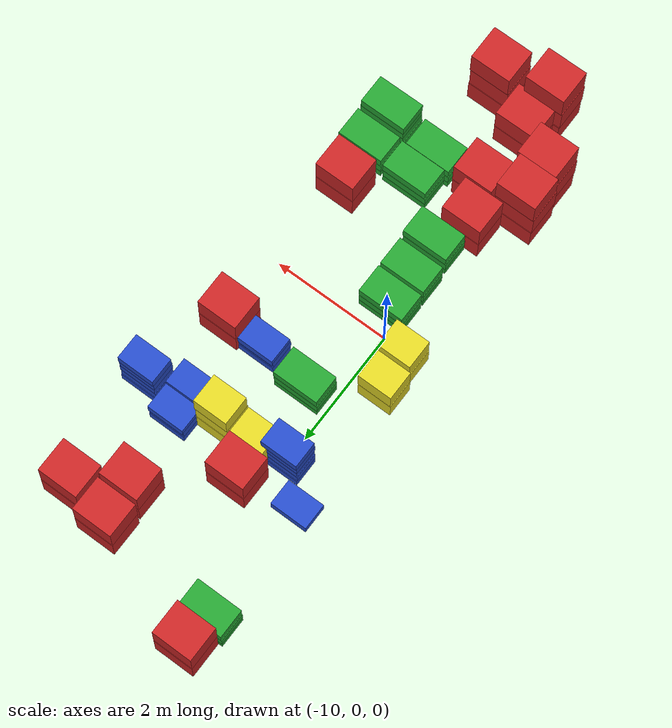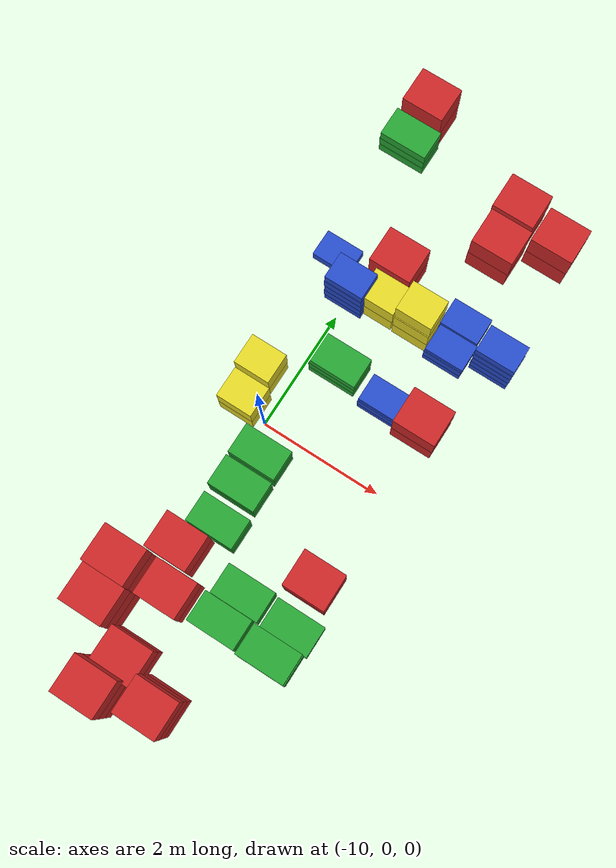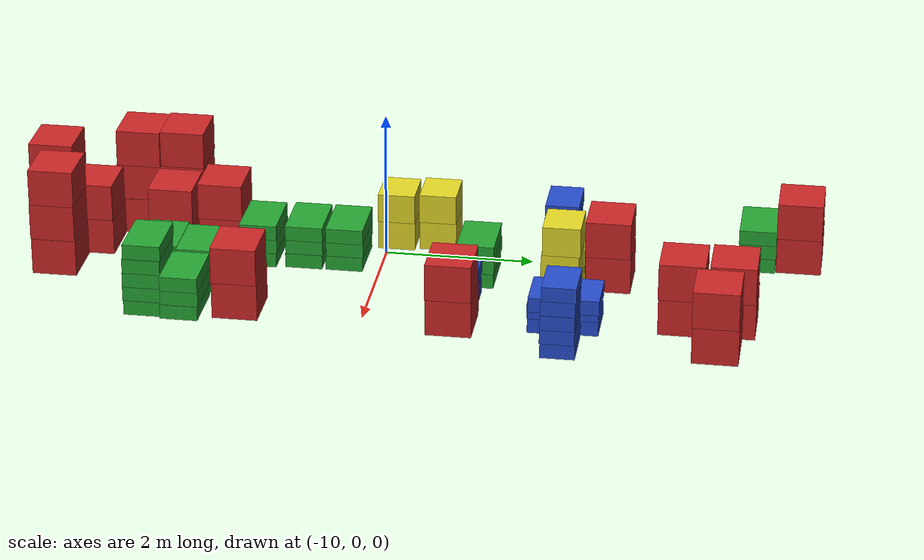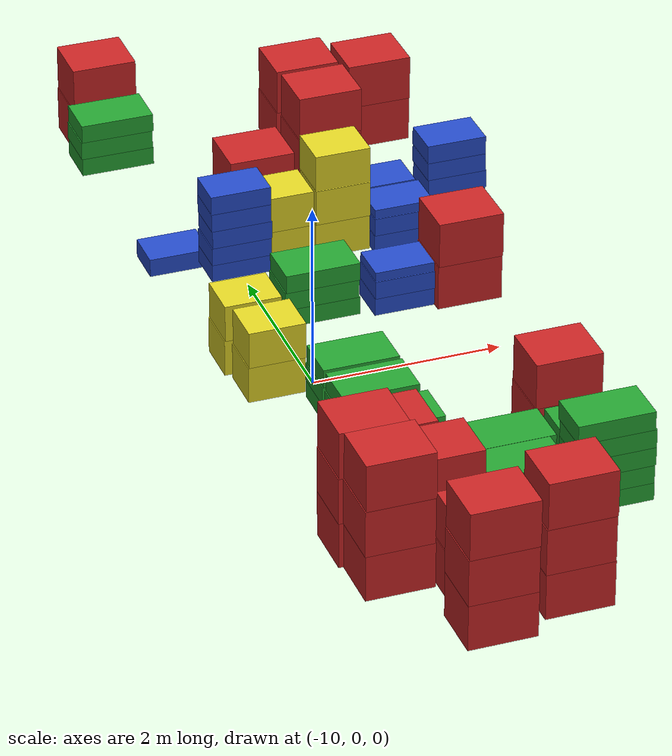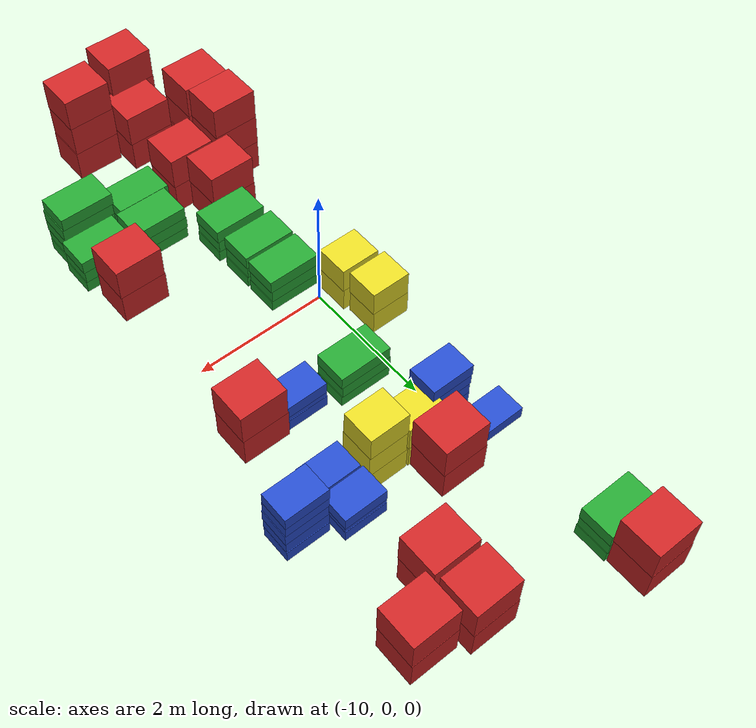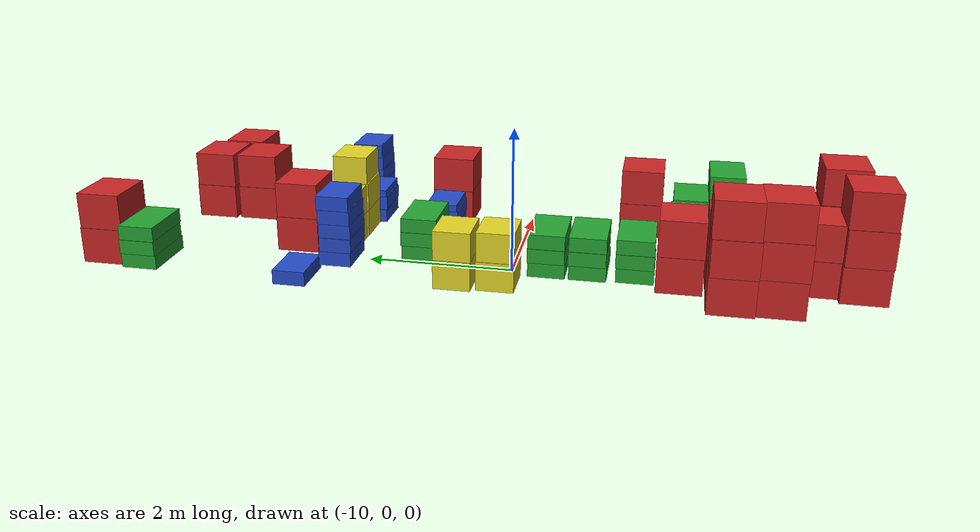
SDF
<sdf version="1.6">
 <world name="default">
  <include><uri>model://sun</uri></include>
  <model name="baggage_A_x3_15">
   <model name="baggage_A_0">
    <static>1</static>
    <link name="link">
     <collision name="collision"><geometry><box><size>0.7 0.6 0.5</size></box></geometry></collision>
     <visual name="visual">
      <geometry><box><size>0.7 0.6 0.5</size></box></geometry>
      <material>
       <script><uri>file://media/materials/scripts/gazebo.material</uri><name>Gazebo/Red</name></script>
      </material>
     </visual>
    </link>
    <pose>0 0 0.25 0 -0 0</pose>
   </model>
   <model name="baggage_A_1">
    <static>1</static>
    <link name="link">
     <collision name="collision"><geometry><box><size>0.7 0.6 0.5</size></box></geometry></collision>
     <visual name="visual">
      <geometry><box><size>0.7 0.6 0.5</size></box></geometry>
      <material>
       <script><uri>file://media/materials/scripts/gazebo.material</uri><name>Gazebo/Red</name></script>
      </material>
     </visual>
    </link>
    <pose>-0.006 -0.0077 0.75 0 -0 0</pose>
   </model>
   <model name="baggage_A_2">
    <static>1</static>
    <link name="link">
     <collision name="collision"><geometry><box><size>0.7 0.6 0.5</size></box></geometry></collision>
     <visual name="visual">
      <geometry><box><size>0.7 0.6 0.5</size></box></geometry>
      <material>
       <script><uri>file://media/materials/scripts/gazebo.material</uri><name>Gazebo/Red</name></script>
      </material>
     </visual>
    </link>
    <pose>0.0045 0.0005 1.25 0 -0 0</pose>
   </model>
   <pose>-10.4661 -3.4462 0 0 -0 0</pose>
  </model>
  <model name="baggage_A_x3_16">
   <model name="baggage_A_0">
    <static>1</static>
    <link name="link">
     <collision name="collision"><geometry><box><size>0.7 0.6 0.5</size></box></geometry></collision>
     <visual name="visual">
      <geometry><box><size>0.7 0.6 0.5</size></box></geometry>
      <material>
       <script><uri>file://media/materials/scripts/gazebo.material</uri><name>Gazebo/Red</name></script>
      </material>
     </visual>
    </link>
    <pose>0 0 0.25 0 -0 0</pose>
   </model>
   <model name="baggage_A_1">
    <static>1</static>
    <link name="link">
     <collision name="collision"><geometry><box><size>0.7 0.6 0.5</size></box></geometry></collision>
     <visual name="visual">
      <geometry><box><size>0.7 0.6 0.5</size></box></geometry>
      <material>
       <script><uri>file://media/materials/scripts/gazebo.material</uri><name>Gazebo/Red</name></script>
      </material>
     </visual>
    </link>
    <pose>-0.006 -0.0077 0.75 0 -0 0</pose>
   </model>
   <model name="baggage_A_2">
    <static>1</static>
    <link name="link">
     <collision name="collision"><geometry><box><size>0.7 0.6 0.5</size></box></geometry></collision>
     <visual name="visual">
      <geometry><box><size>0.7 0.6 0.5</size></box></geometry>
      <material>
       <script><uri>file://media/materials/scripts/gazebo.material</uri><name>Gazebo/Red</name></script>
      </material>
     </visual>
    </link>
    <pose>0.0045 0.0005 1.25 0 -0 0</pose>
   </model>
   <pose>-10.5135 -2.84667 0 0 -0 0</pose>
  </model>
  <model name="baggage_A_x2_15">
   <model name="baggage_A_0">
    <static>1</static>
    <link name="link">
     <collision name="collision"><geometry><box><size>0.7 0.6 0.5</size></box></geometry></collision>
     <visual name="visual">
      <geometry><box><size>0.7 0.6 0.5</size></box></geometry>
      <material>
       <script><uri>file://media/materials/scripts/gazebo.material</uri><name>Gazebo/Red</name></script>
      </material>
     </visual>
    </link>
    <pose>0 0 0.25 0 -0 0</pose>
   </model>
   <model name="baggage_A_1">
    <static>1</static>
    <link name="link">
     <collision name="collision"><geometry><box><size>0.7 0.6 0.5</size></box></geometry></collision>
     <visual name="visual">
      <geometry><box><size>0.7 0.6 0.5</size></box></geometry>
      <material>
       <script><uri>file://media/materials/scripts/gazebo.material</uri><name>Gazebo/Red</name></script>
      </material>
     </visual>
    </link>
    <pose>0.0063 -0.0062 0.75 0 -0 0</pose>
   </model>
   <pose>-9.74487 -2.84389 0 0 -0 0</pose>
  </model>
  <model name="baggage_A_x2_16">
   <model name="baggage_A_0">
    <static>1</static>
    <link name="link">
     <collision name="collision"><geometry><box><size>0.7 0.6 0.5</size></box></geometry></collision>
     <visual name="visual">
      <geometry><box><size>0.7 0.6 0.5</size></box></geometry>
      <material>
       <script><uri>file://media/materials/scripts/gazebo.material</uri><name>Gazebo/Red</name></script>
      </material>
     </visual>
    </link>
    <pose>0 0 0.25 0 -0 0</pose>
   </model>
   <model name="baggage_A_1">
    <static>1</static>
    <link name="link">
     <collision name="collision"><geometry><box><size>0.7 0.6 0.5</size></box></geometry></collision>
     <visual name="visual">
      <geometry><box><size>0.7 0.6 0.5</size></box></geometry>
      <material>
       <script><uri>file://media/materials/scripts/gazebo.material</uri><name>Gazebo/Red</name></script>
      </material>
     </visual>
    </link>
    <pose>0.0063 -0.0062 0.75 0 -0 0</pose>
   </model>
   <pose>-9.98737 -2.21622 0 0 -0 0</pose>
  </model>
  <model name="baggage_D_x3_15">
   <model name="baggage_D_0">
    <static>1</static>
    <link name="link">
     <collision name="collision"><geometry><box><size>0.8 0.5 0.2</size></box></geometry></collision>
     <visual name="visual">
      <geometry><box><size>0.8 0.5 0.2</size></box></geometry>
      <material>
       <script><uri>file://media/materials/scripts/gazebo.material</uri><name>Gazebo/Green</name></script>
      </material>
     </visual>
    </link>
    <pose>0 0 0.1 0 -0 0</pose>
   </model>
   <model name="baggage_D_1">
    <static>1</static>
    <link name="link">
     <collision name="collision"><geometry><box><size>0.8 0.5 0.2</size></box></geometry></collision>
     <visual name="visual">
      <geometry><box><size>0.8 0.5 0.2</size></box></geometry>
      <material>
       <script><uri>file://media/materials/scripts/gazebo.material</uri><name>Gazebo/Green</name></script>
      </material>
     </visual>
    </link>
    <pose>-0.0056 0.0083 0.3 0 -0 0</pose>
   </model>
   <model name="baggage_D_2">
    <static>1</static>
    <link name="link">
     <collision name="collision"><geometry><box><size>0.8 0.5 0.2</size></box></geometry></collision>
     <visual name="visual">
      <geometry><box><size>0.8 0.5 0.2</size></box></geometry>
      <material>
       <script><uri>file://media/materials/scripts/gazebo.material</uri><name>Gazebo/Green</name></script>
      </material>
     </visual>
    </link>
    <pose>0.0053 0.0057 0.5 0 -0 0</pose>
   </model>
   <pose>-8.83234 -2.31719 0 0 -0 0</pose>
  </model>
  <model name="baggage_D_x3_16">
   <model name="baggage_D_0">
    <static>1</static>
    <link name="link">
     <collision name="collision"><geometry><box><size>0.8 0.5 0.2</size></box></geometry></collision>
     <visual name="visual">
      <geometry><box><size>0.8 0.5 0.2</size></box></geometry>
      <material>
       <script><uri>file://media/materials/scripts/gazebo.material</uri><name>Gazebo/Green</name></script>
      </material>
     </visual>
    </link>
    <pose>0 0 0.1 0 -0 0</pose>
   </model>
   <model name="baggage_D_1">
    <static>1</static>
    <link name="link">
     <collision name="collision"><geometry><box><size>0.8 0.5 0.2</size></box></geometry></collision>
     <visual name="visual">
      <geometry><box><size>0.8 0.5 0.2</size></box></geometry>
      <material>
       <script><uri>file://media/materials/scripts/gazebo.material</uri><name>Gazebo/Green</name></script>
      </material>
     </visual>
    </link>
    <pose>-0.0056 0.0083 0.3 0 -0 0</pose>
   </model>
   <model name="baggage_D_2">
    <static>1</static>
    <link name="link">
     <collision name="collision"><geometry><box><size>0.8 0.5 0.2</size></box></geometry></collision>
     <visual name="visual">
      <geometry><box><size>0.8 0.5 0.2</size></box></geometry>
      <material>
       <script><uri>file://media/materials/scripts/gazebo.material</uri><name>Gazebo/Green</name></script>
      </material>
     </visual>
    </link>
    <pose>0.0053 0.0057 0.5 0 -0 0</pose>
   </model>
   <pose>-8.90179 -2.8215 0 0 -0 0</pose>
  </model>
  <model name="baggage_D_x3_17">
   <model name="baggage_D_0">
    <static>1</static>
    <link name="link">
     <collision name="collision"><geometry><box><size>0.8 0.5 0.2</size></box></geometry></collision>
     <visual name="visual">
      <geometry><box><size>0.8 0.5 0.2</size></box></geometry>
      <material>
       <script><uri>file://media/materials/scripts/gazebo.material</uri><name>Gazebo/Green</name></script>
      </material>
     </visual>
    </link>
    <pose>0 0 0.1 0 -0 0</pose>
   </model>
   <model name="baggage_D_1">
    <static>1</static>
    <link name="link">
     <collision name="collision"><geometry><box><size>0.8 0.5 0.2</size></box></geometry></collision>
     <visual name="visual">
      <geometry><box><size>0.8 0.5 0.2</size></box></geometry>
      <material>
       <script><uri>file://media/materials/scripts/gazebo.material</uri><name>Gazebo/Green</name></script>
      </material>
     </visual>
    </link>
    <pose>-0.0056 0.0083 0.3 0 -0 0</pose>
   </model>
   <model name="baggage_D_2">
    <static>1</static>
    <link name="link">
     <collision name="collision"><geometry><box><size>0.8 0.5 0.2</size></box></geometry></collision>
     <visual name="visual">
      <geometry><box><size>0.8 0.5 0.2</size></box></geometry>
      <material>
       <script><uri>file://media/materials/scripts/gazebo.material</uri><name>Gazebo/Green</name></script>
      </material>
     </visual>
    </link>
    <pose>0.0053 0.0057 0.5 0 -0 0</pose>
   </model>
   <pose>-7.97113 -2.34828 0 0 -0 0</pose>
  </model>
  <model name="baggage_D_x5_14">
   <model name="baggage_D_0">
    <static>1</static>
    <link name="link">
     <collision name="collision"><geometry><box><size>0.8 0.5 0.2</size></box></geometry></collision>
     <visual name="visual">
      <geometry><box><size>0.8 0.5 0.2</size></box></geometry>
      <material>
       <script><uri>file://media/materials/scripts/gazebo.material</uri><name>Gazebo/Green</name></script>
      </material>
     </visual>
    </link>
    <pose>0 0 0.1 0 -0 0</pose>
   </model>
   <model name="baggage_D_1">
    <static>1</static>
    <link name="link">
     <collision name="collision"><geometry><box><size>0.8 0.5 0.2</size></box></geometry></collision>
     <visual name="visual">
      <geometry><box><size>0.8 0.5 0.2</size></box></geometry>
      <material>
       <script><uri>file://media/materials/scripts/gazebo.material</uri><name>Gazebo/Green</name></script>
      </material>
     </visual>
    </link>
    <pose>-0.0065 -0.0092 0.3 0 -0 0</pose>
   </model>
   <model name="baggage_D_2">
    <static>1</static>
    <link name="link">
     <collision name="collision"><geometry><box><size>0.8 0.5 0.2</size></box></geometry></collision>
     <visual name="visual">
      <geometry><box><size>0.8 0.5 0.2</size></box></geometry>
      <material>
       <script><uri>file://media/materials/scripts/gazebo.material</uri><name>Gazebo/Green</name></script>
      </material>
     </visual>
    </link>
    <pose>0.005 -0.0052 0.5 0 -0 0</pose>
   </model>
   <model name="baggage_D_3">
    <static>1</static>
    <link name="link">
     <collision name="collision"><geometry><box><size>0.8 0.5 0.2</size></box></geometry></collision>
     <visual name="visual">
      <geometry><box><size>0.8 0.5 0.2</size></box></geometry>
      <material>
       <script><uri>file://media/materials/scripts/gazebo.material</uri><name>Gazebo/Green</name></script>
      </material>
     </visual>
    </link>
    <pose>0.0074 0.0002 0.7 0 -0 0</pose>
   </model>
   <model name="baggage_D_4">
    <static>1</static>
    <link name="link">
     <collision name="collision"><geometry><box><size>0.8 0.5 0.2</size></box></geometry></collision>
     <visual name="visual">
      <geometry><box><size>0.8 0.5 0.2</size></box></geometry>
      <material>
       <script><uri>file://media/materials/scripts/gazebo.material</uri><name>Gazebo/Green</name></script>
      </material>
     </visual>
    </link>
    <pose>-0.006 0.0081 0.9 0 -0 0</pose>
   </model>
   <pose>-8.01706 -2.8393 0 0 -0 0</pose>
  </model>
  <model name="baggage_C_x2_28">
   <model name="baggage_C_0">
    <static>1</static>
    <link name="link">
     <collision name="collision"><geometry><box><size>0.6 0.5 0.4</size></box></geometry></collision>
     <visual name="visual">
      <geometry><box><size>0.6 0.5 0.4</size></box></geometry>
      <material>
       <script><uri>file://media/materials/scripts/gazebo.material</uri><name>Gazebo/Yellow</name></script>
      </material>
     </visual>
    </link>
    <pose>0 0 0.2 0 -0 0</pose>
   </model>
   <model name="baggage_C_1">
    <static>1</static>
    <link name="link">
     <collision name="collision"><geometry><box><size>0.6 0.5 0.4</size></box></geometry></collision>
     <visual name="visual">
      <geometry><box><size>0.6 0.5 0.4</size></box></geometry>
      <material>
       <script><uri>file://media/materials/scripts/gazebo.material</uri><name>Gazebo/Yellow</name></script>
      </material>
     </visual>
    </link>
    <pose>0.0093 -0.002 0.6 0 -0 0</pose>
   </model>
   <pose>-10.425 0.117379 0 0 -0 0</pose>
  </model>
  <model name="baggage_C_x2_29">
   <model name="baggage_C_0">
    <static>1</static>
    <link name="link">
     <collision name="collision"><geometry><box><size>0.6 0.5 0.4</size></box></geometry></collision>
     <visual name="visual">
      <geometry><box><size>0.6 0.5 0.4</size></box></geometry>
      <material>
       <script><uri>file://media/materials/scripts/gazebo.material</uri><name>Gazebo/Yellow</name></script>
      </material>
     </visual>
    </link>
    <pose>0 0 0.2 0 -0 0</pose>
   </model>
   <model name="baggage_C_1">
    <static>1</static>
    <link name="link">
     <collision name="collision"><geometry><box><size>0.6 0.5 0.4</size></box></geometry></collision>
     <visual name="visual">
      <geometry><box><size>0.6 0.5 0.4</size></box></geometry>
      <material>
       <script><uri>file://media/materials/scripts/gazebo.material</uri><name>Gazebo/Yellow</name></script>
      </material>
     </visual>
    </link>
    <pose>0.0093 -0.002 0.6 0 -0 0</pose>
   </model>
   <pose>-10.4859 0.676264 0 0 -0 0</pose>
  </model>
  <model name="baggage_D_x3_19">
   <model name="baggage_D_0">
    <static>1</static>
    <link name="link">
     <collision name="collision"><geometry><box><size>0.8 0.5 0.2</size></box></geometry></collision>
     <visual name="visual">
      <geometry><box><size>0.8 0.5 0.2</size></box></geometry>
      <material>
       <script><uri>file://media/materials/scripts/gazebo.material</uri><name>Gazebo/Green</name></script>
      </material>
     </visual>
    </link>
    <pose>0 0 0.1 0 -0 0</pose>
   </model>
   <model name="baggage_D_1">
    <static>1</static>
    <link name="link">
     <collision name="collision"><geometry><box><size>0.8 0.5 0.2</size></box></geometry></collision>
     <visual name="visual">
      <geometry><box><size>0.8 0.5 0.2</size></box></geometry>
      <material>
       <script><uri>file://media/materials/scripts/gazebo.material</uri><name>Gazebo/Green</name></script>
      </material>
     </visual>
    </link>
    <pose>-0.0056 0.0083 0.3 0 -0 0</pose>
   </model>
   <model name="baggage_D_2">
    <static>1</static>
    <link name="link">
     <collision name="collision"><geometry><box><size>0.8 0.5 0.2</size></box></geometry></collision>
     <visual name="visual">
      <geometry><box><size>0.8 0.5 0.2</size></box></geometry>
      <material>
       <script><uri>file://media/materials/scripts/gazebo.material</uri><name>Gazebo/Green</name></script>
      </material>
     </visual>
    </link>
    <pose>0.0053 0.0057 0.5 0 -0 0</pose>
   </model>
   <pose>-9.712 -1.64517 0 0 -0 0</pose>
  </model>
  <model name="baggage_D_x3_20">
   <model name="baggage_D_0">
    <static>1</static>
    <link name="link">
     <collision name="collision"><geometry><box><size>0.8 0.5 0.2</size></box></geometry></collision>
     <visual name="visual">
      <geometry><box><size>0.8 0.5 0.2</size></box></geometry>
      <material>
       <script><uri>file://media/materials/scripts/gazebo.material</uri><name>Gazebo/Green</name></script>
      </material>
     </visual>
    </link>
    <pose>0 0 0.1 0 -0 0</pose>
   </model>
   <model name="baggage_D_1">
    <static>1</static>
    <link name="link">
     <collision name="collision"><geometry><box><size>0.8 0.5 0.2</size></box></geometry></collision>
     <visual name="visual">
      <geometry><box><size>0.8 0.5 0.2</size></box></geometry>
      <material>
       <script><uri>file://media/materials/scripts/gazebo.material</uri><name>Gazebo/Green</name></script>
      </material>
     </visual>
    </link>
    <pose>-0.0056 0.0083 0.3 0 -0 0</pose>
   </model>
   <model name="baggage_D_2">
    <static>1</static>
    <link name="link">
     <collision name="collision"><geometry><box><size>0.8 0.5 0.2</size></box></geometry></collision>
     <visual name="visual">
      <geometry><box><size>0.8 0.5 0.2</size></box></geometry>
      <material>
       <script><uri>file://media/materials/scripts/gazebo.material</uri><name>Gazebo/Green</name></script>
      </material>
     </visual>
    </link>
    <pose>0.0053 0.0057 0.5 0 -0 0</pose>
   </model>
   <pose>-9.74537 -1.02418 0 0 -0 0</pose>
  </model>
  <model name="baggage_D_x3_21">
   <model name="baggage_D_0">
    <static>1</static>
    <link name="link">
     <collision name="collision"><geometry><box><size>0.8 0.5 0.2</size></box></geometry></collision>
     <visual name="visual">
      <geometry><box><size>0.8 0.5 0.2</size></box></geometry>
      <material>
       <script><uri>file://media/materials/scripts/gazebo.material</uri><name>Gazebo/Green</name></script>
      </material>
     </visual>
    </link>
    <pose>0 0 0.1 0 -0 0</pose>
   </model>
   <model name="baggage_D_1">
    <static>1</static>
    <link name="link">
     <collision name="collision"><geometry><box><size>0.8 0.5 0.2</size></box></geometry></collision>
     <visual name="visual">
      <geometry><box><size>0.8 0.5 0.2</size></box></geometry>
      <material>
       <script><uri>file://media/materials/scripts/gazebo.material</uri><name>Gazebo/Green</name></script>
      </material>
     </visual>
    </link>
    <pose>-0.0056 0.0083 0.3 0 -0 0</pose>
   </model>
   <model name="baggage_D_2">
    <static>1</static>
    <link name="link">
     <collision name="collision"><geometry><box><size>0.8 0.5 0.2</size></box></geometry></collision>
     <visual name="visual">
      <geometry><box><size>0.8 0.5 0.2</size></box></geometry>
      <material>
       <script><uri>file://media/materials/scripts/gazebo.material</uri><name>Gazebo/Green</name></script>
      </material>
     </visual>
    </link>
    <pose>0.0053 0.0057 0.5 0 -0 0</pose>
   </model>
   <pose>-9.7501 -0.475677 0 0 -0 0</pose>
  </model>
  <model name="baggage_A_x2_17">
   <model name="baggage_A_0">
    <static>1</static>
    <link name="link">
     <collision name="collision"><geometry><box><size>0.7 0.6 0.5</size></box></geometry></collision>
     <visual name="visual">
      <geometry><box><size>0.7 0.6 0.5</size></box></geometry>
      <material>
       <script><uri>file://media/materials/scripts/gazebo.material</uri><name>Gazebo/Red</name></script>
      </material>
     </visual>
    </link>
    <pose>0 0 0.25 0 -0 0</pose>
   </model>
   <model name="baggage_A_1">
    <static>1</static>
    <link name="link">
     <collision name="collision"><geometry><box><size>0.7 0.6 0.5</size></box></geometry></collision>
     <visual name="visual">
      <geometry><box><size>0.7 0.6 0.5</size></box></geometry>
      <material>
       <script><uri>file://media/materials/scripts/gazebo.material</uri><name>Gazebo/Red</name></script>
      </material>
     </visual>
    </link>
    <pose>0.0063 -0.0062 0.75 0 -0 0</pose>
   </model>
   <pose>-8.04519 -1.63079 0 0 -0 0</pose>
  </model>
  <model name="baggage_A_x2_18">
   <model name="baggage_A_0">
    <static>1</static>
    <link name="link">
     <collision name="collision"><geometry><box><size>0.7 0.6 0.5</size></box></geometry></collision>
     <visual name="visual">
      <geometry><box><size>0.7 0.6 0.5</size></box></geometry>
      <material>
       <script><uri>file://media/materials/scripts/gazebo.material</uri><name>Gazebo/Red</name></script>
      </material>
     </visual>
    </link>
    <pose>0 0 0.25 0 -0 0</pose>
   </model>
   <model name="baggage_A_1">
    <static>1</static>
    <link name="link">
     <collision name="collision"><geometry><box><size>0.7 0.6 0.5</size></box></geometry></collision>
     <visual name="visual">
      <geometry><box><size>0.7 0.6 0.5</size></box></geometry>
      <material>
       <script><uri>file://media/materials/scripts/gazebo.material</uri><name>Gazebo/Red</name></script>
      </material>
     </visual>
    </link>
    <pose>0.0063 -0.0062 0.75 0 -0 0</pose>
   </model>
   <pose>-9.73963 -3.94644 0 0 -0 0</pose>
  </model>
  <model name="baggage_A_x3_19">
   <model name="baggage_A_0">
    <static>1</static>
    <link name="link">
     <collision name="collision"><geometry><box><size>0.7 0.6 0.5</size></box></geometry></collision>
     <visual name="visual">
      <geometry><box><size>0.7 0.6 0.5</size></box></geometry>
      <material>
       <script><uri>file://media/materials/scripts/gazebo.material</uri><name>Gazebo/Red</name></script>
      </material>
     </visual>
    </link>
    <pose>0 0 0.25 0 -0 0</pose>
   </model>
   <model name="baggage_A_1">
    <static>1</static>
    <link name="link">
     <collision name="collision"><geometry><box><size>0.7 0.6 0.5</size></box></geometry></collision>
     <visual name="visual">
      <geometry><box><size>0.7 0.6 0.5</size></box></geometry>
      <material>
       <script><uri>file://media/materials/scripts/gazebo.material</uri><name>Gazebo/Red</name></script>
      </material>
     </visual>
    </link>
    <pose>-0.006 -0.0077 0.75 0 -0 0</pose>
   </model>
   <model name="baggage_A_2">
    <static>1</static>
    <link name="link">
     <collision name="collision"><geometry><box><size>0.7 0.6 0.5</size></box></geometry></collision>
     <visual name="visual">
      <geometry><box><size>0.7 0.6 0.5</size></box></geometry>
      <material>
       <script><uri>file://media/materials/scripts/gazebo.material</uri><name>Gazebo/Red</name></script>
      </material>
     </visual>
    </link>
    <pose>0.0045 0.0005 1.25 0 -0 0</pose>
   </model>
   <pose>-9.85525 -4.50574 0 0 -0 0</pose>
  </model>
  <model name="baggage_A_x3_20">
   <model name="baggage_A_0">
    <static>1</static>
    <link name="link">
     <collision name="collision"><geometry><box><size>0.7 0.6 0.5</size></box></geometry></collision>
     <visual name="visual">
      <geometry><box><size>0.7 0.6 0.5</size></box></geometry>
      <material>
       <script><uri>file://media/materials/scripts/gazebo.material</uri><name>Gazebo/Red</name></script>
      </material>
     </visual>
    </link>
    <pose>0 0 0.25 0 -0 0</pose>
   </model>
   <model name="baggage_A_1">
    <static>1</static>
    <link name="link">
     <collision name="collision"><geometry><box><size>0.7 0.6 0.5</size></box></geometry></collision>
     <visual name="visual">
      <geometry><box><size>0.7 0.6 0.5</size></box></geometry>
      <material>
       <script><uri>file://media/materials/scripts/gazebo.material</uri><name>Gazebo/Red</name></script>
      </material>
     </visual>
    </link>
    <pose>-0.006 -0.0077 0.75 0 -0 0</pose>
   </model>
   <model name="baggage_A_2">
    <static>1</static>
    <link name="link">
     <collision name="collision"><geometry><box><size>0.7 0.6 0.5</size></box></geometry></collision>
     <visual name="visual">
      <geometry><box><size>0.7 0.6 0.5</size></box></geometry>
      <material>
       <script><uri>file://media/materials/scripts/gazebo.material</uri><name>Gazebo/Red</name></script>
      </material>
     </visual>
    </link>
    <pose>0.0045 0.0005 1.25 0 -0 0</pose>
   </model>
   <pose>-9.00067 -4.28892 0 0 -0 0</pose>
  </model>
  <model name="baggage_B">
   <static>1</static>
   <link name="link">
    <collision name="collision"><geometry><box><size>0.65 0.45 0.2</size></box></geometry></collision>
    <visual name="visual">
     <geometry><box><size>0.65 0.45 0.2</size></box></geometry>
     <material>
      <script><uri>file://media/materials/scripts/gazebo.material</uri><name>Gazebo/Blue</name></script>
     </material>
    </visual>
   </link>
   <pose>-10.5257 2.89026 0 0 -0 0</pose>
  </model>
  <model name="baggage_B_x5_22">
   <model name="baggage_B_0">
    <static>1</static>
    <link name="link">
     <collision name="collision"><geometry><box><size>0.65 0.45 0.2</size></box></geometry></collision>
     <visual name="visual">
      <geometry><box><size>0.65 0.45 0.2</size></box></geometry>
      <material>
       <script><uri>file://media/materials/scripts/gazebo.material</uri><name>Gazebo/Blue</name></script>
      </material>
     </visual>
    </link>
    <pose>0 0 0.1 0 -0 0</pose>
   </model>
   <model name="baggage_B_1">
    <static>1</static>
    <link name="link">
     <collision name="collision"><geometry><box><size>0.65 0.45 0.2</size></box></geometry></collision>
     <visual name="visual">
      <geometry><box><size>0.65 0.45 0.2</size></box></geometry>
      <material>
       <script><uri>file://media/materials/scripts/gazebo.material</uri><name>Gazebo/Blue</name></script>
      </material>
     </visual>
    </link>
    <pose>-0.0014 -0.0091 0.3 0 -0 0</pose>
   </model>
   <model name="baggage_B_2">
    <static>1</static>
    <link name="link">
     <collision name="collision"><geometry><box><size>0.65 0.45 0.2</size></box></geometry></collision>
     <visual name="visual">
      <geometry><box><size>0.65 0.45 0.2</size></box></geometry>
      <material>
       <script><uri>file://media/materials/scripts/gazebo.material</uri><name>Gazebo/Blue</name></script>
      </material>
     </visual>
    </link>
    <pose>0.0076 -0.0066 0.5 0 -0 0</pose>
   </model>
   <model name="baggage_B_3">
    <static>1</static>
    <link name="link">
     <collision name="collision"><geometry><box><size>0.65 0.45 0.2</size></box></geometry></collision>
     <visual name="visual">
      <geometry><box><size>0.65 0.45 0.2</size></box></geometry>
      <material>
       <script><uri>file://media/materials/scripts/gazebo.material</uri><name>Gazebo/Blue</name></script>
      </material>
     </visual>
    </link>
    <pose>0 -0.0032 0.7 0 -0 0</pose>
   </model>
   <model name="baggage_B_4">
    <static>1</static>
    <link name="link">
     <collision name="collision"><geometry><box><size>0.65 0.45 0.2</size></box></geometry></collision>
     <visual name="visual">
      <geometry><box><size>0.65 0.45 0.2</size></box></geometry>
      <material>
       <script><uri>file://media/materials/scripts/gazebo.material</uri><name>Gazebo/Blue</name></script>
      </material>
     </visual>
    </link>
    <pose>0.0023 0.0073 0.9 0 -0 0</pose>
   </model>
   <pose>-10.0025 2.41367 0 0 -0 0</pose>
  </model>
  <model name="baggage_D_x3_27">
   <model name="baggage_D_0">
    <static>1</static>
    <link name="link">
     <collision name="collision"><geometry><box><size>0.8 0.5 0.2</size></box></geometry></collision>
     <visual name="visual">
      <geometry><box><size>0.8 0.5 0.2</size></box></geometry>
      <material>
       <script><uri>file://media/materials/scripts/gazebo.material</uri><name>Gazebo/Green</name></script>
      </material>
     </visual>
    </link>
    <pose>0 0 0.1 0 -0 0</pose>
   </model>
   <model name="baggage_D_1">
    <static>1</static>
    <link name="link">
     <collision name="collision"><geometry><box><size>0.8 0.5 0.2</size></box></geometry></collision>
     <visual name="visual">
      <geometry><box><size>0.8 0.5 0.2</size></box></geometry>
      <material>
       <script><uri>file://media/materials/scripts/gazebo.material</uri><name>Gazebo/Green</name></script>
      </material>
     </visual>
    </link>
    <pose>-0.0056 0.0083 0.3 0 -0 0</pose>
   </model>
   <model name="baggage_D_2">
    <static>1</static>
    <link name="link">
     <collision name="collision"><geometry><box><size>0.8 0.5 0.2</size></box></geometry></collision>
     <visual name="visual">
      <geometry><box><size>0.8 0.5 0.2</size></box></geometry>
      <material>
       <script><uri>file://media/materials/scripts/gazebo.material</uri><name>Gazebo/Green</name></script>
      </material>
     </visual>
    </link>
    <pose>0.0053 0.0057 0.5 0 -0 0</pose>
   </model>
   <pose>-10.5355 5.00263 0 0 -0 0</pose>
  </model>
  <model name="baggage_A_x2_22">
   <model name="baggage_A_0">
    <static>1</static>
    <link name="link">
     <collision name="collision"><geometry><box><size>0.7 0.6 0.5</size></box></geometry></collision>
     <visual name="visual">
      <geometry><box><size>0.7 0.6 0.5</size></box></geometry>
      <material>
       <script><uri>file://media/materials/scripts/gazebo.material</uri><name>Gazebo/Red</name></script>
      </material>
     </visual>
    </link>
    <pose>0 0 0.25 0 -0 0</pose>
   </model>
   <model name="baggage_A_1">
    <static>1</static>
    <link name="link">
     <collision name="collision"><geometry><box><size>0.7 0.6 0.5</size></box></geometry></collision>
     <visual name="visual">
      <geometry><box><size>0.7 0.6 0.5</size></box></geometry>
      <material>
       <script><uri>file://media/materials/scripts/gazebo.material</uri><name>Gazebo/Red</name></script>
      </material>
     </visual>
    </link>
    <pose>0.0063 -0.0062 0.75 0 -0 0</pose>
   </model>
   <pose>-10.5171 5.56243 0 0 -0 0</pose>
  </model>
  <model name="baggage_C_x2_33">
   <model name="baggage_C_0">
    <static>1</static>
    <link name="link">
     <collision name="collision"><geometry><box><size>0.6 0.5 0.4</size></box></geometry></collision>
     <visual name="visual">
      <geometry><box><size>0.6 0.5 0.4</size></box></geometry>
      <material>
       <script><uri>file://media/materials/scripts/gazebo.material</uri><name>Gazebo/Yellow</name></script>
      </material>
     </visual>
    </link>
    <pose>0 0 0.2 0 -0 0</pose>
   </model>
   <model name="baggage_C_1">
    <static>1</static>
    <link name="link">
     <collision name="collision"><geometry><box><size>0.6 0.5 0.4</size></box></geometry></collision>
     <visual name="visual">
      <geometry><box><size>0.6 0.5 0.4</size></box></geometry>
      <material>
       <script><uri>file://media/materials/scripts/gazebo.material</uri><name>Gazebo/Yellow</name></script>
      </material>
     </visual>
    </link>
    <pose>0.0093 -0.002 0.6 0 -0 0</pose>
   </model>
   <pose>-9.48605 2.53889 0 0 -0 0</pose>
  </model>
  <model name="baggage_A_x2_23">
   <model name="baggage_A_0">
    <static>1</static>
    <link name="link">
     <collision name="collision"><geometry><box><size>0.7 0.6 0.5</size></box></geometry></collision>
     <visual name="visual">
      <geometry><box><size>0.7 0.6 0.5</size></box></geometry>
      <material>
       <script><uri>file://media/materials/scripts/gazebo.material</uri><name>Gazebo/Red</name></script>
      </material>
     </visual>
    </link>
    <pose>0 0 0.25 0 -0 0</pose>
   </model>
   <model name="baggage_A_1">
    <static>1</static>
    <link name="link">
     <collision name="collision"><geometry><box><size>0.7 0.6 0.5</size></box></geometry></collision>
     <visual name="visual">
      <geometry><box><size>0.7 0.6 0.5</size></box></geometry>
      <material>
       <script><uri>file://media/materials/scripts/gazebo.material</uri><name>Gazebo/Red</name></script>
      </material>
     </visual>
    </link>
    <pose>0.0063 -0.0062 0.75 0 -0 0</pose>
   </model>
   <pose>-9.56791 3.09169 0 0 -0 0</pose>
  </model>
  <model name="baggage_C_x3_32">
   <model name="baggage_C_0">
    <static>1</static>
    <link name="link">
     <collision name="collision"><geometry><box><size>0.6 0.5 0.4</size></box></geometry></collision>
     <visual name="visual">
      <geometry><box><size>0.6 0.5 0.4</size></box></geometry>
      <material>
       <script><uri>file://media/materials/scripts/gazebo.material</uri><name>Gazebo/Yellow</name></script>
      </material>
     </visual>
    </link>
    <pose>0 0 0.2 0 -0 0</pose>
   </model>
   <model name="baggage_C_1">
    <static>1</static>
    <link name="link">
     <collision name="collision"><geometry><box><size>0.6 0.5 0.4</size></box></geometry></collision>
     <visual name="visual">
      <geometry><box><size>0.6 0.5 0.4</size></box></geometry>
      <material>
       <script><uri>file://media/materials/scripts/gazebo.material</uri><name>Gazebo/Yellow</name></script>
      </material>
     </visual>
    </link>
    <pose>0.0062 -0.0069 0.6 0 -0 0</pose>
   </model>
   <model name="baggage_C_2">
    <static>1</static>
    <link name="link">
     <collision name="collision"><geometry><box><size>0.6 0.5 0.4</size></box></geometry></collision>
     <visual name="visual">
      <geometry><box><size>0.6 0.5 0.4</size></box></geometry>
      <material>
       <script><uri>file://media/materials/scripts/gazebo.material</uri><name>Gazebo/Yellow</name></script>
      </material>
     </visual>
    </link>
    <pose>0.0089 0.0083 1 0 -0 0</pose>
   </model>
   <pose>-8.85945 2.52958 0 0 -0 0</pose>
  </model>
  <model name="baggage_B_x3_27">
   <model name="baggage_B_0">
    <static>1</static>
    <link name="link">
     <collision name="collision"><geometry><box><size>0.65 0.45 0.2</size></box></geometry></collision>
     <visual name="visual">
      <geometry><box><size>0.65 0.45 0.2</size></box></geometry>
      <material>
       <script><uri>file://media/materials/scripts/gazebo.material</uri><name>Gazebo/Blue</name></script>
      </material>
     </visual>
    </link>
    <pose>0 0 0.1 0 -0 0</pose>
   </model>
   <model name="baggage_B_1">
    <static>1</static>
    <link name="link">
     <collision name="collision"><geometry><box><size>0.65 0.45 0.2</size></box></geometry></collision>
     <visual name="visual">
      <geometry><box><size>0.65 0.45 0.2</size></box></geometry>
      <material>
       <script><uri>file://media/materials/scripts/gazebo.material</uri><name>Gazebo/Blue</name></script>
      </material>
     </visual>
    </link>
    <pose>0.0028 -0.0086 0.3 0 -0 0</pose>
   </model>
   <model name="baggage_B_2">
    <static>1</static>
    <link name="link">
     <collision name="collision"><geometry><box><size>0.65 0.45 0.2</size></box></geometry></collision>
     <visual name="visual">
      <geometry><box><size>0.65 0.45 0.2</size></box></geometry>
      <material>
       <script><uri>file://media/materials/scripts/gazebo.material</uri><name>Gazebo/Blue</name></script>
      </material>
     </visual>
    </link>
    <pose>0.0092 0.006 0.4 0 -0 0</pose>
   </model>
   <pose>-8.21698 2.40711 0 0 -0 0</pose>
  </model>
  <model name="baggage_B_x3_28">
   <model name="baggage_B_0">
    <static>1</static>
    <link name="link">
     <collision name="collision"><geometry><box><size>0.65 0.45 0.2</size></box></geometry></collision>
     <visual name="visual">
      <geometry><box><size>0.65 0.45 0.2</size></box></geometry>
      <material>
       <script><uri>file://media/materials/scripts/gazebo.material</uri><name>Gazebo/Blue</name></script>
      </material>
     </visual>
    </link>
    <pose>0 0 0.1 0 -0 0</pose>
   </model>
   <model name="baggage_B_1">
    <static>1</static>
    <link name="link">
     <collision name="collision"><geometry><box><size>0.65 0.45 0.2</size></box></geometry></collision>
     <visual name="visual">
      <geometry><box><size>0.65 0.45 0.2</size></box></geometry>
      <material>
       <script><uri>file://media/materials/scripts/gazebo.material</uri><name>Gazebo/Blue</name></script>
      </material>
     </visual>
    </link>
    <pose>0.0028 -0.0086 0.3 0 -0 0</pose>
   </model>
   <model name="baggage_B_2">
    <static>1</static>
    <link name="link">
     <collision name="collision"><geometry><box><size>0.65 0.45 0.2</size></box></geometry></collision>
     <visual name="visual">
      <geometry><box><size>0.65 0.45 0.2</size></box></geometry>
      <material>
       <script><uri>file://media/materials/scripts/gazebo.material</uri><name>Gazebo/Blue</name></script>
      </material>
     </visual>
    </link>
    <pose>0.0092 0.006 0.4 0 -0 0</pose>
   </model>
   <pose>-8.24075 2.8792 0 0 -0 0</pose>
  </model>
  <model name="baggage_B_x5_23">
   <model name="baggage_B_0">
    <static>1</static>
    <link name="link">
     <collision name="collision"><geometry><box><size>0.65 0.45 0.2</size></box></geometry></collision>
     <visual name="visual">
      <geometry><box><size>0.65 0.45 0.2</size></box></geometry>
      <material>
       <script><uri>file://media/materials/scripts/gazebo.material</uri><name>Gazebo/Blue</name></script>
      </material>
     </visual>
    </link>
    <pose>0 0 0.1 0 -0 0</pose>
   </model>
   <model name="baggage_B_1">
    <static>1</static>
    <link name="link">
     <collision name="collision"><geometry><box><size>0.65 0.45 0.2</size></box></geometry></collision>
     <visual name="visual">
      <geometry><box><size>0.65 0.45 0.2</size></box></geometry>
      <material>
       <script><uri>file://media/materials/scripts/gazebo.material</uri><name>Gazebo/Blue</name></script>
      </material>
     </visual>
    </link>
    <pose>-0.0014 -0.0091 0.3 0 -0 0</pose>
   </model>
   <model name="baggage_B_2">
    <static>1</static>
    <link name="link">
     <collision name="collision"><geometry><box><size>0.65 0.45 0.2</size></box></geometry></collision>
     <visual name="visual">
      <geometry><box><size>0.65 0.45 0.2</size></box></geometry>
      <material>
       <script><uri>file://media/materials/scripts/gazebo.material</uri><name>Gazebo/Blue</name></script>
      </material>
     </visual>
    </link>
    <pose>0.0076 -0.0066 0.5 0 -0 0</pose>
   </model>
   <model name="baggage_B_3">
    <static>1</static>
    <link name="link">
     <collision name="collision"><geometry><box><size>0.65 0.45 0.2</size></box></geometry></collision>
     <visual name="visual">
      <geometry><box><size>0.65 0.45 0.2</size></box></geometry>
      <material>
       <script><uri>file://media/materials/scripts/gazebo.material</uri><name>Gazebo/Blue</name></script>
      </material>
     </visual>
    </link>
    <pose>0 -0.0032 0.7 0 -0 0</pose>
   </model>
   <model name="baggage_B_4">
    <static>1</static>
    <link name="link">
     <collision name="collision"><geometry><box><size>0.65 0.45 0.2</size></box></geometry></collision>
     <visual name="visual">
      <geometry><box><size>0.65 0.45 0.2</size></box></geometry>
      <material>
       <script><uri>file://media/materials/scripts/gazebo.material</uri><name>Gazebo/Blue</name></script>
      </material>
     </visual>
    </link>
    <pose>0.0023 0.0073 0.9 0 -0 0</pose>
   </model>
   <pose>-7.53212 2.65285 0 0 -0 0</pose>
  </model>
  <model name="baggage_A_x2_24">
   <model name="baggage_A_0">
    <static>1</static>
    <link name="link">
     <collision name="collision"><geometry><box><size>0.7 0.6 0.5</size></box></geometry></collision>
     <visual name="visual">
      <geometry><box><size>0.7 0.6 0.5</size></box></geometry>
      <material>
       <script><uri>file://media/materials/scripts/gazebo.material</uri><name>Gazebo/Red</name></script>
      </material>
     </visual>
    </link>
    <pose>0 0 0.25 0 -0 0</pose>
   </model>
   <model name="baggage_A_1">
    <static>1</static>
    <link name="link">
     <collision name="collision"><geometry><box><size>0.7 0.6 0.5</size></box></geometry></collision>
     <visual name="visual">
      <geometry><box><size>0.7 0.6 0.5</size></box></geometry>
      <material>
       <script><uri>file://media/materials/scripts/gazebo.material</uri><name>Gazebo/Red</name></script>
      </material>
     </visual>
    </link>
    <pose>0.0063 -0.0062 0.75 0 -0 0</pose>
   </model>
   <pose>-7.97244 1.18999 0 0 -0 0</pose>
  </model>
  <model name="baggage_B_x3_29">
   <model name="baggage_B_0">
    <static>1</static>
    <link name="link">
     <collision name="collision"><geometry><box><size>0.65 0.45 0.2</size></box></geometry></collision>
     <visual name="visual">
      <geometry><box><size>0.65 0.45 0.2</size></box></geometry>
      <material>
       <script><uri>file://media/materials/scripts/gazebo.material</uri><name>Gazebo/Blue</name></script>
      </material>
     </visual>
    </link>
    <pose>0 0 0.1 0 -0 0</pose>
   </model>
   <model name="baggage_B_1">
    <static>1</static>
    <link name="link">
     <collision name="collision"><geometry><box><size>0.65 0.45 0.2</size></box></geometry></collision>
     <visual name="visual">
      <geometry><box><size>0.65 0.45 0.2</size></box></geometry>
      <material>
       <script><uri>file://media/materials/scripts/gazebo.material</uri><name>Gazebo/Blue</name></script>
      </material>
     </visual>
    </link>
    <pose>0.0028 -0.0086 0.3 0 -0 0</pose>
   </model>
   <model name="baggage_B_2">
    <static>1</static>
    <link name="link">
     <collision name="collision"><geometry><box><size>0.65 0.45 0.2</size></box></geometry></collision>
     <visual name="visual">
      <geometry><box><size>0.65 0.45 0.2</size></box></geometry>
      <material>
       <script><uri>file://media/materials/scripts/gazebo.material</uri><name>Gazebo/Blue</name></script>
      </material>
     </visual>
    </link>
    <pose>0.0092 0.006 0.4 0 -0 0</pose>
   </model>
   <pose>-8.64915 1.21734 0 0 -0 0</pose>
  </model>
  <model name="baggage_D_x3_32">
   <model name="baggage_D_0">
    <static>1</static>
    <link name="link">
     <collision name="collision"><geometry><box><size>0.8 0.5 0.2</size></box></geometry></collision>
     <visual name="visual">
      <geometry><box><size>0.8 0.5 0.2</size></box></geometry>
      <material>
       <script><uri>file://media/materials/scripts/gazebo.material</uri><name>Gazebo/Green</name></script>
      </material>
     </visual>
    </link>
    <pose>0 0 0.1 0 -0 0</pose>
   </model>
   <model name="baggage_D_1">
    <static>1</static>
    <link name="link">
     <collision name="collision"><geometry><box><size>0.8 0.5 0.2</size></box></geometry></collision>
     <visual name="visual">
      <geometry><box><size>0.8 0.5 0.2</size></box></geometry>
      <material>
       <script><uri>file://media/materials/scripts/gazebo.material</uri><name>Gazebo/Green</name></script>
      </material>
     </visual>
    </link>
    <pose>-0.0056 0.0083 0.3 0 -0 0</pose>
   </model>
   <model name="baggage_D_2">
    <static>1</static>
    <link name="link">
     <collision name="collision"><geometry><box><size>0.8 0.5 0.2</size></box></geometry></collision>
     <visual name="visual">
      <geometry><box><size>0.8 0.5 0.2</size></box></geometry>
      <material>
       <script><uri>file://media/materials/scripts/gazebo.material</uri><name>Gazebo/Green</name></script>
      </material>
     </visual>
    </link>
    <pose>0.0053 0.0057 0.5 0 -0 0</pose>
   </model>
   <pose>-9.50385 1.32928 0 0 -0 0</pose>
  </model>
  <model name="baggage_A_x2_25">
   <model name="baggage_A_0">
    <static>1</static>
    <link name="link">
     <collision name="collision"><geometry><box><size>0.7 0.6 0.5</size></box></geometry></collision>
     <visual name="visual">
      <geometry><box><size>0.7 0.6 0.5</size></box></geometry>
      <material>
       <script><uri>file://media/materials/scripts/gazebo.material</uri><name>Gazebo/Red</name></script>
      </material>
     </visual>
    </link>
    <pose>0 0 0.25 0 -0 0</pose>
   </model>
   <model name="baggage_A_1">
    <static>1</static>
    <link name="link">
     <collision name="collision"><geometry><box><size>0.7 0.6 0.5</size></box></geometry></collision>
     <visual name="visual">
      <geometry><box><size>0.7 0.6 0.5</size></box></geometry>
      <material>
       <script><uri>file://media/materials/scripts/gazebo.material</uri><name>Gazebo/Red</name></script>
      </material>
     </visual>
    </link>
    <pose>0.0063 -0.0062 0.75 0 -0 0</pose>
   </model>
   <pose>-8.46245 4.80823 0 0 -0 0</pose>
  </model>
  <model name="baggage_A_x2_26">
   <model name="baggage_A_0">
    <static>1</static>
    <link name="link">
     <collision name="collision"><geometry><box><size>0.7 0.6 0.5</size></box></geometry></collision>
     <visual name="visual">
      <geometry><box><size>0.7 0.6 0.5</size></box></geometry>
      <material>
       <script><uri>file://media/materials/scripts/gazebo.material</uri><name>Gazebo/Red</name></script>
      </material>
     </visual>
    </link>
    <pose>0 0 0.25 0 -0 0</pose>
   </model>
   <model name="baggage_A_1">
    <static>1</static>
    <link name="link">
     <collision name="collision"><geometry><box><size>0.7 0.6 0.5</size></box></geometry></collision>
     <visual name="visual">
      <geometry><box><size>0.7 0.6 0.5</size></box></geometry>
      <material>
       <script><uri>file://media/materials/scripts/gazebo.material</uri><name>Gazebo/Red</name></script>
      </material>
     </visual>
    </link>
    <pose>0.0063 -0.0062 0.75 0 -0 0</pose>
   </model>
   <pose>-7.69689 4.64441 0 0 -0 0</pose>
  </model>
  <model name="baggage_A_x2_27">
   <model name="baggage_A_0">
    <static>1</static>
    <link name="link">
     <collision name="collision"><geometry><box><size>0.7 0.6 0.5</size></box></geometry></collision>
     <visual name="visual">
      <geometry><box><size>0.7 0.6 0.5</size></box></geometry>
      <material>
       <script><uri>file://media/materials/scripts/gazebo.material</uri><name>Gazebo/Red</name></script>
      </material>
     </visual>
    </link>
    <pose>0 0 0.25 0 -0 0</pose>
   </model>
   <model name="baggage_A_1">
    <static>1</static>
    <link name="link">
     <collision name="collision"><geometry><box><size>0.7 0.6 0.5</size></box></geometry></collision>
     <visual name="visual">
      <geometry><box><size>0.7 0.6 0.5</size></box></geometry>
      <material>
       <script><uri>file://media/materials/scripts/gazebo.material</uri><name>Gazebo/Red</name></script>
      </material>
     </visual>
    </link>
    <pose>0.0063 -0.0062 0.75 0 -0 0</pose>
   </model>
   <pose>-8.43497 4.15252 0 0 -0 0</pose>
  </model>
 </world>
</sdf>
